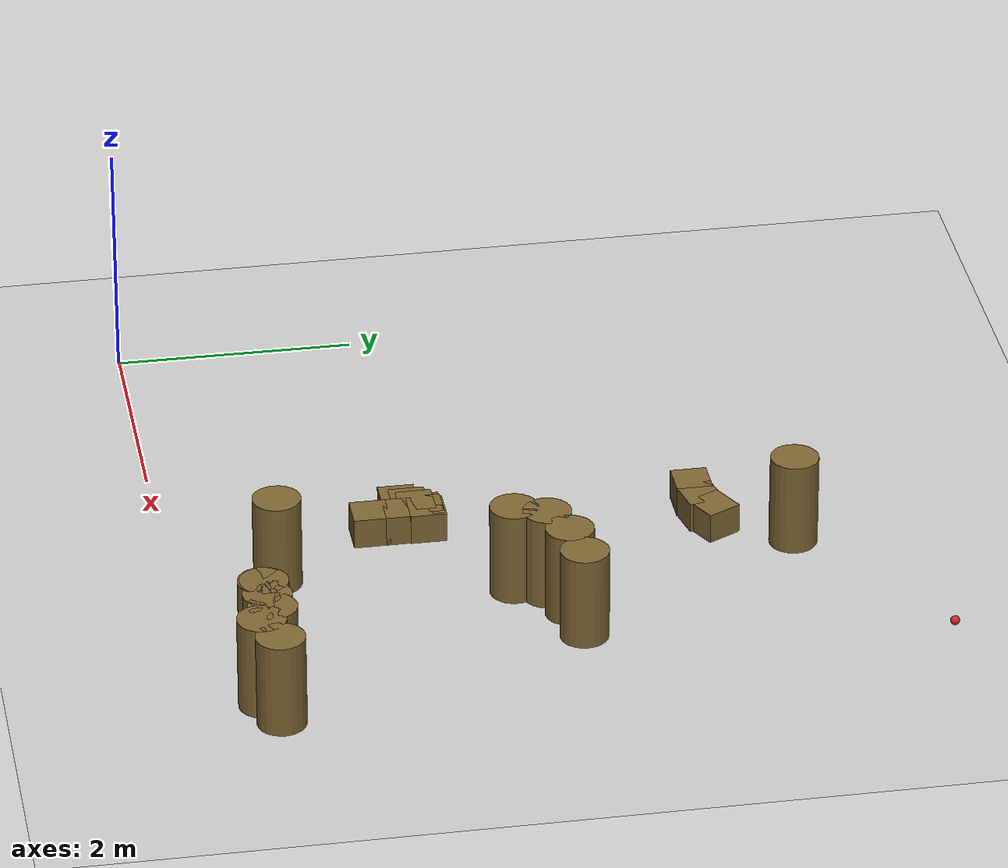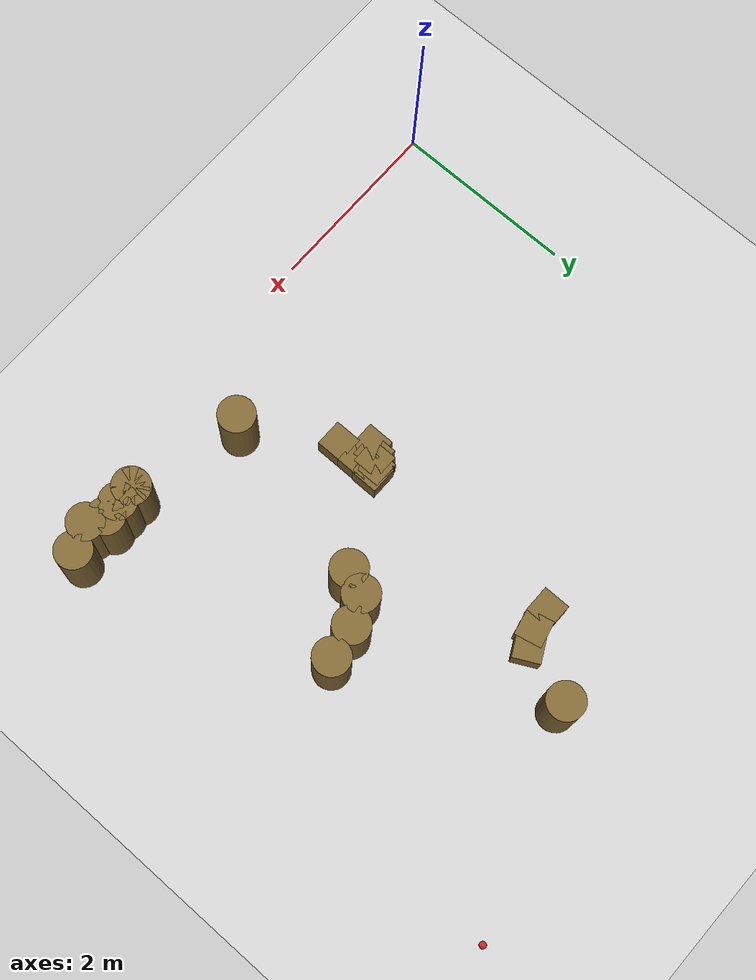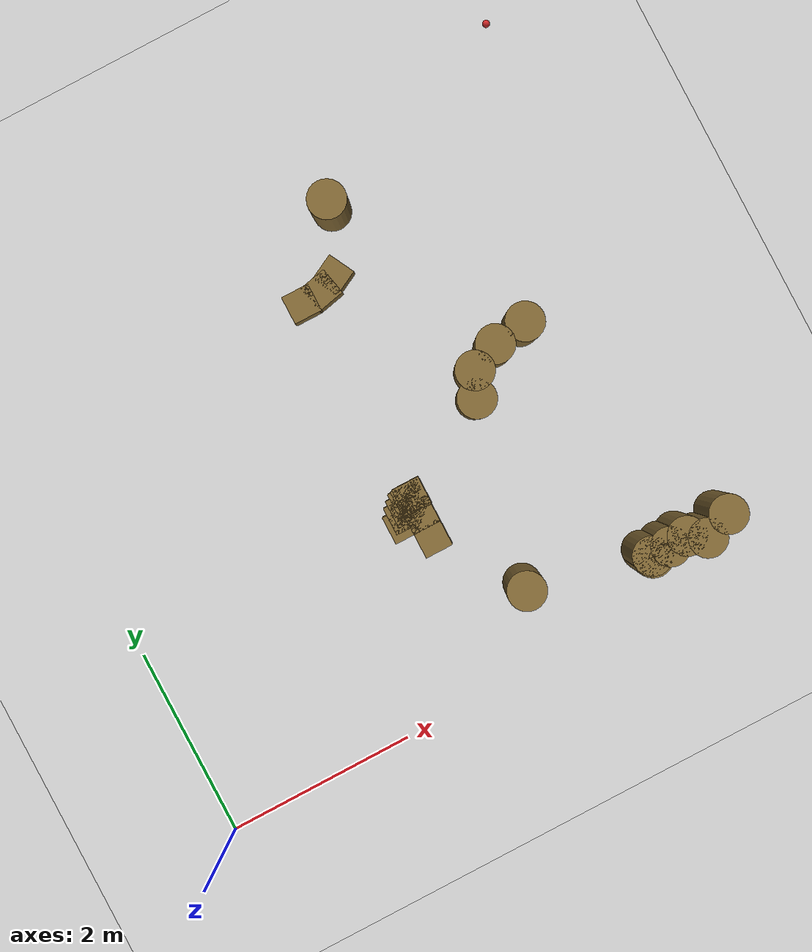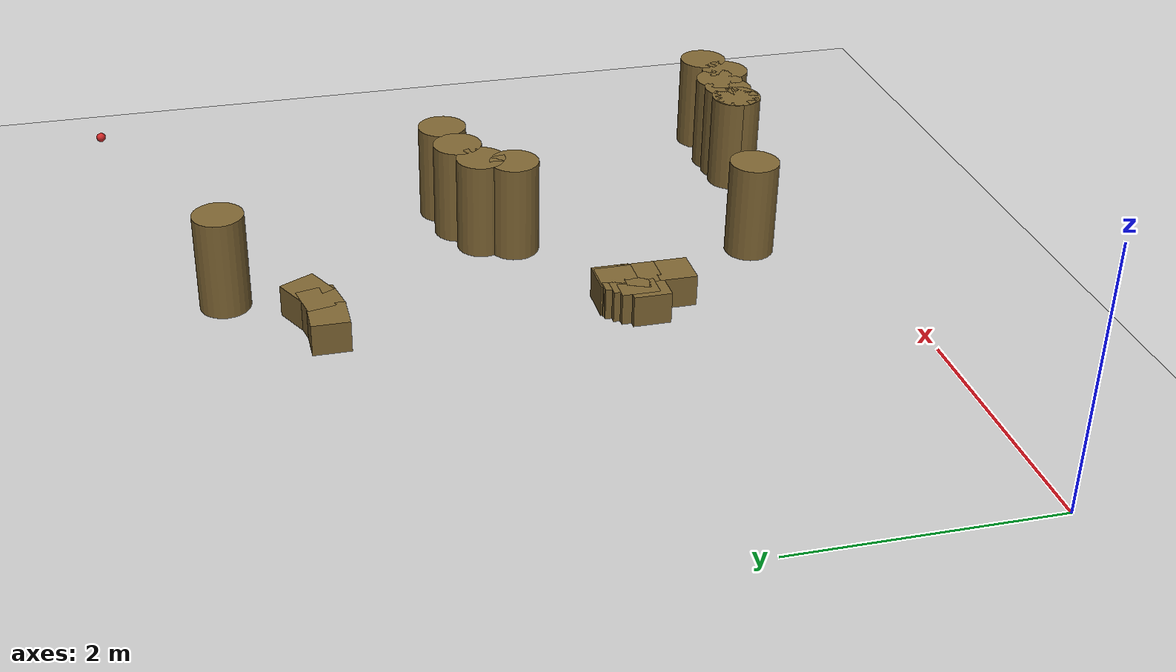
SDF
<sdf version="1.7">
 <world name="default">
  <model name="ground_plane">
   <static>1</static>
   <link name="link">
    <collision name="collision">
     <geometry><plane><normal>0 0 1</normal><size>100 100</size></plane></geometry>
     <surface><friction><ode><mu>100</mu><mu2>50</mu2></ode></friction></surface>
    </collision>
    <visual name="visual">
     <cast_shadows>0</cast_shadows>
     <geometry><plane><normal>0 0 1</normal><size>100 100</size></plane></geometry>
     <material>
      <script><uri>file://media/materials/scripts/gazebo.material</uri><name>Gazebo/Grey</name></script>
     </material>
    </visual>
   </link>
  </model>
  <model name="target_5">
   <link name="link">
    <pose>0 0 0.0375 0 -0 0</pose>
    <inertial>
     <mass>0.1467</mass>
     <inertia>
      <ixx>8.25187e-05</ixx>
      <ixy>0</ixy>
      <ixz>0</ixz>
      <iyy>8.25187e-05</iyy>
      <iyz>0</iyz>
      <izz>8.25187e-05</izz>
     </inertia>
    </inertial>
    <velocity_decay><linear>0</linear><angular>0.005</angular></velocity_decay>
    <visual name="visual">
     <geometry><sphere><radius>0.0375</radius></sphere></geometry>
     <material>
      <script><uri>file://media/materials/scripts/gazebo.material</uri><name>Gazebo/Red</name></script>
      <shader type="pixel"/>
     </material>
    </visual>
    <collision name="collision">
     <geometry><sphere><radius>0.0375</radius></sphere></geometry>
     <surface>
      <friction>
       <ode><mu>1</mu><mu2>1</mu2><fdir1>0 0 0</fdir1><slip1>0</slip1><slip2>0</slip2></ode>
       <torsional>
        <coefficient>1</coefficient>
        <patch_radius>0</patch_radius>
        <surface_radius>0.01</surface_radius>
        <use_patch_radius>0</use_patch_radius>
        <ode><slip>0</slip></ode>
       </torsional>
      </friction>
      <bounce><restitution_coefficient>0</restitution_coefficient><threshold>1e+06</threshold></bounce>
      <contact>
       <collide_without_contact>0</collide_without_contact>
       <collide_without_contact_bitmask>1</collide_without_contact_bitmask>
       <collide_bitmask>1</collide_bitmask>
       <ode>
        <soft_cfm>0</soft_cfm>
        <soft_erp>0.2</soft_erp>
        <kp>100000</kp>
        <kd>100</kd>
        <max_vel>100</max_vel>
        <min_depth>0.001</min_depth>
       </ode>
       <bullet>
        <split_impulse>1</split_impulse>
        <split_impulse_penetration_threshold>-0.01</split_impulse_penetration_threshold>
        <soft_cfm>0</soft_cfm>
        <soft_erp>0.2</soft_erp>
        <kp>100000</kp>
        <kd>100</kd>
       </bullet>
      </contact>
     </surface>
    </collision>
   </link>
   <static>1</static>
   <pose>6 6 0.5 1.38576 1.35823 0.565525</pose>
  </model>
  <model name="mini_cylinder_0_clone_0_clone_clone_clone_clone_clone_10">
   <link name="link">
    <inertial>
     <mass>1</mass>
     <inertia><ixx>0.145833</ixx><ixy>0</ixy><ixz>0</ixz><iyy>0.145833</iyy><iyz>0</iyz><izz>0.125</izz></inertia>
    </inertial>
    <visual name="visual">
     <geometry><cylinder><radius>0.2</radius><length>0.8</length></cylinder></geometry>
     <material>
      <script><name>Gazebo/Grey</name><uri>file://media/materials/scripts/gazebo.material</uri></script>
      <shader type="vertex"><normal_map>__default__</normal_map></shader>
      <ambient>0.5 0.4 0.2 1</ambient>
      <diffuse>0.7 0.7 0.7 1</diffuse>
      <specular>0.01 0.01 0.01 1</specular>
      <emissive>0 0 0 1</emissive>
     </material>
    </visual>
    <collision name="collision">
     <geometry><cylinder><radius>0.2</radius><length>0.8</length></cylinder></geometry>
     <surface>
      <friction>
       <ode><mu>1</mu><mu2>1</mu2><fdir1>0 0 0</fdir1><slip1>0</slip1><slip2>0</slip2></ode>
       <torsional>
        <coefficient>1</coefficient>
        <patch_radius>0</patch_radius>
        <surface_radius>0</surface_radius>
        <use_patch_radius>1</use_patch_radius>
        <ode><slip>0</slip></ode>
       </torsional>
      </friction>
      <bounce><restitution_coefficient>0</restitution_coefficient><threshold>1e+06</threshold></bounce>
      <contact>
       <collide_without_contact>0</collide_without_contact>
       <collide_without_contact_bitmask>1</collide_without_contact_bitmask>
       <collide_bitmask>1</collide_bitmask>
       <ode>
        <soft_cfm>0</soft_cfm>
        <soft_erp>0.2</soft_erp>
        <kp>1e+13</kp>
        <kd>1</kd>
        <max_vel>0.01</max_vel>
        <min_depth>0</min_depth>
       </ode>
       <bullet>
        <split_impulse>1</split_impulse>
        <split_impulse_penetration_threshold>-0.01</split_impulse_penetration_threshold>
        <soft_cfm>0</soft_cfm>
        <soft_erp>0.2</soft_erp>
        <kp>1e+13</kp>
        <kd>1</kd>
       </bullet>
      </contact>
     </surface>
    </collision>
   </link>
   <static>1</static>
   <pose>5.84454 0.611639 0.4 0 -0 0</pose>
  </model>
  <model name="mini_cylinder_0_clone_0_clone_clone_clone_clone_clone_11">
   <link name="link">
    <inertial>
     <mass>1</mass>
     <inertia><ixx>0.145833</ixx><ixy>0</ixy><ixz>0</ixz><iyy>0.145833</iyy><iyz>0</iyz><izz>0.125</izz></inertia>
    </inertial>
    <visual name="visual">
     <geometry><cylinder><radius>0.2</radius><length>0.8</length></cylinder></geometry>
     <material>
      <script><name>Gazebo/Grey</name><uri>file://media/materials/scripts/gazebo.material</uri></script>
      <shader type="vertex"><normal_map>__default__</normal_map></shader>
      <ambient>0.5 0.4 0.2 1</ambient>
      <diffuse>0.7 0.7 0.7 1</diffuse>
      <specular>0.01 0.01 0.01 1</specular>
      <emissive>0 0 0 1</emissive>
     </material>
    </visual>
    <collision name="collision">
     <geometry><cylinder><radius>0.2</radius><length>0.8</length></cylinder></geometry>
     <surface>
      <friction>
       <ode><mu>1</mu><mu2>1</mu2><fdir1>0 0 0</fdir1><slip1>0</slip1><slip2>0</slip2></ode>
       <torsional>
        <coefficient>1</coefficient>
        <patch_radius>0</patch_radius>
        <surface_radius>0</surface_radius>
        <use_patch_radius>1</use_patch_radius>
        <ode><slip>0</slip></ode>
       </torsional>
      </friction>
      <bounce><restitution_coefficient>0</restitution_coefficient><threshold>1e+06</threshold></bounce>
      <contact>
       <collide_without_contact>0</collide_without_contact>
       <collide_without_contact_bitmask>1</collide_without_contact_bitmask>
       <collide_bitmask>1</collide_bitmask>
       <ode>
        <soft_cfm>0</soft_cfm>
        <soft_erp>0.2</soft_erp>
        <kp>1e+13</kp>
        <kd>1</kd>
        <max_vel>0.01</max_vel>
        <min_depth>0</min_depth>
       </ode>
       <bullet>
        <split_impulse>1</split_impulse>
        <split_impulse_penetration_threshold>-0.01</split_impulse_penetration_threshold>
        <soft_cfm>0</soft_cfm>
        <soft_erp>0.2</soft_erp>
        <kp>1e+13</kp>
        <kd>1</kd>
       </bullet>
      </contact>
     </surface>
    </collision>
   </link>
   <static>1</static>
   <pose>5.56143 0.50154 0.4 0 -0 0</pose>
  </model>
  <model name="mini_cylinder_0_clone_0_clone_clone_clone_clone_clone_12">
   <link name="link">
    <inertial>
     <mass>1</mass>
     <inertia><ixx>0.145833</ixx><ixy>0</ixy><ixz>0</ixz><iyy>0.145833</iyy><iyz>0</iyz><izz>0.125</izz></inertia>
    </inertial>
    <visual name="visual">
     <geometry><cylinder><radius>0.2</radius><length>0.8</length></cylinder></geometry>
     <material>
      <script><name>Gazebo/Grey</name><uri>file://media/materials/scripts/gazebo.material</uri></script>
      <shader type="vertex"><normal_map>__default__</normal_map></shader>
      <ambient>0.5 0.4 0.2 1</ambient>
      <diffuse>0.7 0.7 0.7 1</diffuse>
      <specular>0.01 0.01 0.01 1</specular>
      <emissive>0 0 0 1</emissive>
     </material>
    </visual>
    <collision name="collision">
     <geometry><cylinder><radius>0.2</radius><length>0.8</length></cylinder></geometry>
     <surface>
      <friction>
       <ode><mu>1</mu><mu2>1</mu2><fdir1>0 0 0</fdir1><slip1>0</slip1><slip2>0</slip2></ode>
       <torsional>
        <coefficient>1</coefficient>
        <patch_radius>0</patch_radius>
        <surface_radius>0</surface_radius>
        <use_patch_radius>1</use_patch_radius>
        <ode><slip>0</slip></ode>
       </torsional>
      </friction>
      <bounce><restitution_coefficient>0</restitution_coefficient><threshold>1e+06</threshold></bounce>
      <contact>
       <collide_without_contact>0</collide_without_contact>
       <collide_without_contact_bitmask>1</collide_without_contact_bitmask>
       <collide_bitmask>1</collide_bitmask>
       <ode>
        <soft_cfm>0</soft_cfm>
        <soft_erp>0.2</soft_erp>
        <kp>1e+13</kp>
        <kd>1</kd>
        <max_vel>0.01</max_vel>
        <min_depth>0</min_depth>
       </ode>
       <bullet>
        <split_impulse>1</split_impulse>
        <split_impulse_penetration_threshold>-0.01</split_impulse_penetration_threshold>
        <soft_cfm>0</soft_cfm>
        <soft_erp>0.2</soft_erp>
        <kp>1e+13</kp>
        <kd>1</kd>
       </bullet>
      </contact>
     </surface>
    </collision>
   </link>
   <static>1</static>
   <pose>5.38842 0.611639 0.4 0 -0 0</pose>
  </model>
  <model name="mini_cylinder_0_clone_0_clone_clone_clone_clone_clone_13">
   <link name="link">
    <inertial>
     <mass>1</mass>
     <inertia><ixx>0.145833</ixx><ixy>0</ixy><ixz>0</ixz><iyy>0.145833</iyy><iyz>0</iyz><izz>0.125</izz></inertia>
    </inertial>
    <visual name="visual">
     <geometry><cylinder><radius>0.2</radius><length>0.8</length></cylinder></geometry>
     <material>
      <script><name>Gazebo/Grey</name><uri>file://media/materials/scripts/gazebo.material</uri></script>
      <shader type="vertex"><normal_map>__default__</normal_map></shader>
      <ambient>0.5 0.4 0.2 1</ambient>
      <diffuse>0.7 0.7 0.7 1</diffuse>
      <specular>0.01 0.01 0.01 1</specular>
      <emissive>0 0 0 1</emissive>
     </material>
    </visual>
    <collision name="collision">
     <geometry><cylinder><radius>0.2</radius><length>0.8</length></cylinder></geometry>
     <surface>
      <friction>
       <ode><mu>1</mu><mu2>1</mu2><fdir1>0 0 0</fdir1><slip1>0</slip1><slip2>0</slip2></ode>
       <torsional>
        <coefficient>1</coefficient>
        <patch_radius>0</patch_radius>
        <surface_radius>0</surface_radius>
        <use_patch_radius>1</use_patch_radius>
        <ode><slip>0</slip></ode>
       </torsional>
      </friction>
      <bounce><restitution_coefficient>0</restitution_coefficient><threshold>1e+06</threshold></bounce>
      <contact>
       <collide_without_contact>0</collide_without_contact>
       <collide_without_contact_bitmask>1</collide_without_contact_bitmask>
       <collide_bitmask>1</collide_bitmask>
       <ode>
        <soft_cfm>0</soft_cfm>
        <soft_erp>0.2</soft_erp>
        <kp>1e+13</kp>
        <kd>1</kd>
        <max_vel>0.01</max_vel>
        <min_depth>0</min_depth>
       </ode>
       <bullet>
        <split_impulse>1</split_impulse>
        <split_impulse_penetration_threshold>-0.01</split_impulse_penetration_threshold>
        <soft_cfm>0</soft_cfm>
        <soft_erp>0.2</soft_erp>
        <kp>1e+13</kp>
        <kd>1</kd>
       </bullet>
      </contact>
     </surface>
    </collision>
   </link>
   <static>1</static>
   <pose>5.19968 0.595912 0.4 0 -0 0</pose>
  </model>
  <model name="mini_cylinder_0_clone_0_clone_clone_clone_clone_clone_14">
   <link name="link">
    <inertial>
     <mass>1</mass>
     <inertia><ixx>0.145833</ixx><ixy>0</ixy><ixz>0</ixz><iyy>0.145833</iyy><iyz>0</iyz><izz>0.125</izz></inertia>
    </inertial>
    <visual name="visual">
     <geometry><cylinder><radius>0.2</radius><length>0.8</length></cylinder></geometry>
     <material>
      <script><name>Gazebo/Grey</name><uri>file://media/materials/scripts/gazebo.material</uri></script>
      <shader type="vertex"><normal_map>__default__</normal_map></shader>
      <ambient>0.5 0.4 0.2 1</ambient>
      <diffuse>0.7 0.7 0.7 1</diffuse>
      <specular>0.01 0.01 0.01 1</specular>
      <emissive>0 0 0 1</emissive>
     </material>
    </visual>
    <collision name="collision">
     <geometry><cylinder><radius>0.2</radius><length>0.8</length></cylinder></geometry>
     <surface>
      <friction>
       <ode><mu>1</mu><mu2>1</mu2><fdir1>0 0 0</fdir1><slip1>0</slip1><slip2>0</slip2></ode>
       <torsional>
        <coefficient>1</coefficient>
        <patch_radius>0</patch_radius>
        <surface_radius>0</surface_radius>
        <use_patch_radius>1</use_patch_radius>
        <ode><slip>0</slip></ode>
       </torsional>
      </friction>
      <bounce><restitution_coefficient>0</restitution_coefficient><threshold>1e+06</threshold></bounce>
      <contact>
       <collide_without_contact>0</collide_without_contact>
       <collide_without_contact_bitmask>1</collide_without_contact_bitmask>
       <collide_bitmask>1</collide_bitmask>
       <ode>
        <soft_cfm>0</soft_cfm>
        <soft_erp>0.2</soft_erp>
        <kp>1e+13</kp>
        <kd>1</kd>
        <max_vel>0.01</max_vel>
        <min_depth>0</min_depth>
       </ode>
       <bullet>
        <split_impulse>1</split_impulse>
        <split_impulse_penetration_threshold>-0.01</split_impulse_penetration_threshold>
        <soft_cfm>0</soft_cfm>
        <soft_erp>0.2</soft_erp>
        <kp>1e+13</kp>
        <kd>1</kd>
       </bullet>
      </contact>
     </surface>
    </collision>
   </link>
   <static>1</static>
   <pose>5 0.595912 0.4 0 -0 0</pose>
  </model>
  <model name="mini_cylinder_0_clone_0_clone_clone_clone_clone_clone_15">
   <link name="link">
    <inertial>
     <mass>1</mass>
     <inertia><ixx>0.145833</ixx><ixy>0</ixy><ixz>0</ixz><iyy>0.145833</iyy><iyz>0</iyz><izz>0.125</izz></inertia>
    </inertial>
    <visual name="visual">
     <geometry><cylinder><radius>0.2</radius><length>0.8</length></cylinder></geometry>
     <material>
      <script><name>Gazebo/Grey</name><uri>file://media/materials/scripts/gazebo.material</uri></script>
      <shader type="vertex"><normal_map>__default__</normal_map></shader>
      <ambient>0.5 0.4 0.2 1</ambient>
      <diffuse>0.7 0.7 0.7 1</diffuse>
      <specular>0.01 0.01 0.01 1</specular>
      <emissive>0 0 0 1</emissive>
     </material>
    </visual>
    <collision name="collision">
     <geometry><cylinder><radius>0.2</radius><length>0.8</length></cylinder></geometry>
     <surface>
      <friction>
       <ode><mu>1</mu><mu2>1</mu2><fdir1>0 0 0</fdir1><slip1>0</slip1><slip2>0</slip2></ode>
       <torsional>
        <coefficient>1</coefficient>
        <patch_radius>0</patch_radius>
        <surface_radius>0</surface_radius>
        <use_patch_radius>1</use_patch_radius>
        <ode><slip>0</slip></ode>
       </torsional>
      </friction>
      <bounce><restitution_coefficient>0</restitution_coefficient><threshold>1e+06</threshold></bounce>
      <contact>
       <collide_without_contact>0</collide_without_contact>
       <collide_without_contact_bitmask>1</collide_without_contact_bitmask>
       <collide_bitmask>1</collide_bitmask>
       <ode>
        <soft_cfm>0</soft_cfm>
        <soft_erp>0.2</soft_erp>
        <kp>1e+13</kp>
        <kd>1</kd>
        <max_vel>0.01</max_vel>
        <min_depth>0</min_depth>
       </ode>
       <bullet>
        <split_impulse>1</split_impulse>
        <split_impulse_penetration_threshold>-0.01</split_impulse_penetration_threshold>
        <soft_cfm>0</soft_cfm>
        <soft_erp>0.2</soft_erp>
        <kp>1e+13</kp>
        <kd>1</kd>
       </bullet>
      </contact>
     </surface>
    </collision>
   </link>
   <static>1</static>
   <pose>5 0.580184 0.4 0 -0 0</pose>
  </model>
  <model name="mini_cylinder_0_clone_0_clone_clone_clone_clone_clone_16">
   <link name="link">
    <inertial>
     <mass>1</mass>
     <inertia><ixx>0.145833</ixx><ixy>0</ixy><ixz>0</ixz><iyy>0.145833</iyy><iyz>0</iyz><izz>0.125</izz></inertia>
    </inertial>
    <visual name="visual">
     <geometry><cylinder><radius>0.2</radius><length>0.8</length></cylinder></geometry>
     <material>
      <script><name>Gazebo/Grey</name><uri>file://media/materials/scripts/gazebo.material</uri></script>
      <shader type="vertex"><normal_map>__default__</normal_map></shader>
      <ambient>0.5 0.4 0.2 1</ambient>
      <diffuse>0.7 0.7 0.7 1</diffuse>
      <specular>0.01 0.01 0.01 1</specular>
      <emissive>0 0 0 1</emissive>
     </material>
    </visual>
    <collision name="collision">
     <geometry><cylinder><radius>0.2</radius><length>0.8</length></cylinder></geometry>
     <surface>
      <friction>
       <ode><mu>1</mu><mu2>1</mu2><fdir1>0 0 0</fdir1><slip1>0</slip1><slip2>0</slip2></ode>
       <torsional>
        <coefficient>1</coefficient>
        <patch_radius>0</patch_radius>
        <surface_radius>0</surface_radius>
        <use_patch_radius>1</use_patch_radius>
        <ode><slip>0</slip></ode>
       </torsional>
      </friction>
      <bounce><restitution_coefficient>0</restitution_coefficient><threshold>1e+06</threshold></bounce>
      <contact>
       <collide_without_contact>0</collide_without_contact>
       <collide_without_contact_bitmask>1</collide_without_contact_bitmask>
       <collide_bitmask>1</collide_bitmask>
       <ode>
        <soft_cfm>0</soft_cfm>
        <soft_erp>0.2</soft_erp>
        <kp>1e+13</kp>
        <kd>1</kd>
        <max_vel>0.01</max_vel>
        <min_depth>0</min_depth>
       </ode>
       <bullet>
        <split_impulse>1</split_impulse>
        <split_impulse_penetration_threshold>-0.01</split_impulse_penetration_threshold>
        <soft_cfm>0</soft_cfm>
        <soft_erp>0.2</soft_erp>
        <kp>1e+13</kp>
        <kd>1</kd>
       </bullet>
      </contact>
     </surface>
    </collision>
   </link>
   <static>1</static>
   <pose>4.3189 2.98661 0.4 0 -0 0</pose>
  </model>
  <model name="mini_cylinder_0_clone_0_clone_clone_clone_clone_clone_26">
   <link name="link">
    <inertial>
     <mass>1</mass>
     <inertia><ixx>0.145833</ixx><ixy>0</ixy><ixz>0</ixz><iyy>0.145833</iyy><iyz>0</iyz><izz>0.125</izz></inertia>
    </inertial>
    <visual name="visual">
     <geometry><cylinder><radius>0.2</radius><length>0.8</length></cylinder></geometry>
     <material>
      <script><name>Gazebo/Grey</name><uri>file://media/materials/scripts/gazebo.material</uri></script>
      <shader type="vertex"><normal_map>__default__</normal_map></shader>
      <ambient>0.5 0.4 0.2 1</ambient>
      <diffuse>0.7 0.7 0.7 1</diffuse>
      <specular>0.01 0.01 0.01 1</specular>
      <emissive>0 0 0 1</emissive>
     </material>
    </visual>
    <collision name="collision">
     <geometry><cylinder><radius>0.2</radius><length>0.8</length></cylinder></geometry>
     <surface>
      <friction>
       <ode><mu>1</mu><mu2>1</mu2><fdir1>0 0 0</fdir1><slip1>0</slip1><slip2>0</slip2></ode>
       <torsional>
        <coefficient>1</coefficient>
        <patch_radius>0</patch_radius>
        <surface_radius>0</surface_radius>
        <use_patch_radius>1</use_patch_radius>
        <ode><slip>0</slip></ode>
       </torsional>
      </friction>
      <bounce><restitution_coefficient>0</restitution_coefficient><threshold>1e+06</threshold></bounce>
      <contact>
       <collide_without_contact>0</collide_without_contact>
       <collide_without_contact_bitmask>1</collide_without_contact_bitmask>
       <collide_bitmask>1</collide_bitmask>
       <ode>
        <soft_cfm>0</soft_cfm>
        <soft_erp>0.2</soft_erp>
        <kp>1e+13</kp>
        <kd>1</kd>
        <max_vel>0.01</max_vel>
        <min_depth>0</min_depth>
       </ode>
       <bullet>
        <split_impulse>1</split_impulse>
        <split_impulse_penetration_threshold>-0.01</split_impulse_penetration_threshold>
        <soft_cfm>0</soft_cfm>
        <soft_erp>0.2</soft_erp>
        <kp>1e+13</kp>
        <kd>1</kd>
       </bullet>
      </contact>
     </surface>
    </collision>
   </link>
   <static>1</static>
   <pose>4.20879 2.73496 0.4 0 -0 0</pose>
  </model>
  <model name="mini_cylinder_0_clone_0_clone_clone_clone_clone_clone_41">
   <link name="link">
    <inertial>
     <mass>1</mass>
     <inertia><ixx>0.145833</ixx><ixy>0</ixy><ixz>0</ixz><iyy>0.145833</iyy><iyz>0</iyz><izz>0.125</izz></inertia>
    </inertial>
    <visual name="visual">
     <geometry><cylinder><radius>0.2</radius><length>0.8</length></cylinder></geometry>
     <material>
      <script><name>Gazebo/Grey</name><uri>file://media/materials/scripts/gazebo.material</uri></script>
      <shader type="vertex"><normal_map>__default__</normal_map></shader>
      <ambient>0.5 0.4 0.2 1</ambient>
      <diffuse>0.7 0.7 0.7 1</diffuse>
      <specular>0.01 0.01 0.01 1</specular>
      <emissive>0 0 0 1</emissive>
     </material>
    </visual>
    <collision name="collision">
     <geometry><cylinder><radius>0.2</radius><length>0.8</length></cylinder></geometry>
     <surface>
      <friction>
       <ode><mu>1</mu><mu2>1</mu2><fdir1>0 0 0</fdir1><slip1>0</slip1><slip2>0</slip2></ode>
       <torsional>
        <coefficient>1</coefficient>
        <patch_radius>0</patch_radius>
        <surface_radius>0</surface_radius>
        <use_patch_radius>1</use_patch_radius>
        <ode><slip>0</slip></ode>
       </torsional>
      </friction>
      <bounce><restitution_coefficient>0</restitution_coefficient><threshold>1e+06</threshold></bounce>
      <contact>
       <collide_without_contact>0</collide_without_contact>
       <collide_without_contact_bitmask>1</collide_without_contact_bitmask>
       <collide_bitmask>1</collide_bitmask>
       <ode>
        <soft_cfm>0</soft_cfm>
        <soft_erp>0.2</soft_erp>
        <kp>1e+13</kp>
        <kd>1</kd>
        <max_vel>0.01</max_vel>
        <min_depth>0</min_depth>
       </ode>
       <bullet>
        <split_impulse>1</split_impulse>
        <split_impulse_penetration_threshold>-0.01</split_impulse_penetration_threshold>
        <soft_cfm>0</soft_cfm>
        <soft_erp>0.2</soft_erp>
        <kp>1e+13</kp>
        <kd>1</kd>
       </bullet>
      </contact>
     </surface>
    </collision>
   </link>
   <static>1</static>
   <pose>3.76894 0.863026 0.4 0 -0 0</pose>
  </model>
  <model name="mini_box_0.3">
   <link name="link">
    <inertial>
     <mass>1</mass>
     <inertia>
      <ixx>0.166667</ixx>
      <ixy>0</ixy>
      <ixz>0</ixz>
      <iyy>0.166667</iyy>
      <iyz>0</iyz>
      <izz>0.166667</izz>
     </inertia>
    </inertial>
    <visual name="visual">
     <geometry><box><size>0.3 0.3 0.5</size></box></geometry>
     <material>
      <script><name>Gazebo/Grey</name><uri>file://media/materials/scripts/gazebo.material</uri></script>
      <shader type="vertex"><normal_map>__default__</normal_map></shader>
      <ambient>0.5 0.4 0.2 1</ambient>
      <diffuse>0.7 0.7 0.7 1</diffuse>
      <specular>0.01 0.01 0.01 1</specular>
      <emissive>0 0 0 1</emissive>
     </material>
    </visual>
    <collision name="collision">
     <geometry><box><size>0.3 0.3 0.3</size></box></geometry>
     <surface>
      <friction>
       <ode><mu>1</mu><mu2>1</mu2><fdir1>0 0 0</fdir1><slip1>0</slip1><slip2>0</slip2></ode>
       <torsional>
        <coefficient>1</coefficient>
        <patch_radius>0</patch_radius>
        <surface_radius>0</surface_radius>
        <use_patch_radius>1</use_patch_radius>
        <ode><slip>0</slip></ode>
       </torsional>
      </friction>
      <bounce><restitution_coefficient>0</restitution_coefficient><threshold>1e+06</threshold></bounce>
      <contact>
       <collide_without_contact>0</collide_without_contact>
       <collide_without_contact_bitmask>1</collide_without_contact_bitmask>
       <collide_bitmask>1</collide_bitmask>
       <ode>
        <soft_cfm>0</soft_cfm>
        <soft_erp>0.2</soft_erp>
        <kp>1e+13</kp>
        <kd>1</kd>
        <max_vel>0.01</max_vel>
        <min_depth>0</min_depth>
       </ode>
       <bullet>
        <split_impulse>1</split_impulse>
        <split_impulse_penetration_threshold>-0.01</split_impulse_penetration_threshold>
        <soft_cfm>0</soft_cfm>
        <soft_erp>0.2</soft_erp>
        <kp>1e+13</kp>
        <kd>1</kd>
       </bullet>
      </contact>
     </surface>
    </collision>
   </link>
   <static>1</static>
   <pose>3.18574 2.1731 0 0 -0 0</pose>
  </model>
  <model name="mini_box_0.3_clone">
   <link name="link">
    <inertial>
     <mass>1</mass>
     <inertia>
      <ixx>0.166667</ixx>
      <ixy>0</ixy>
      <ixz>0</ixz>
      <iyy>0.166667</iyy>
      <iyz>0</iyz>
      <izz>0.166667</izz>
     </inertia>
    </inertial>
    <visual name="visual">
     <geometry><box><size>0.3 0.3 0.5</size></box></geometry>
     <material>
      <script><name>Gazebo/Grey</name><uri>file://media/materials/scripts/gazebo.material</uri></script>
      <shader type="vertex"><normal_map>__default__</normal_map></shader>
      <ambient>0.5 0.4 0.2 1</ambient>
      <diffuse>0.7 0.7 0.7 1</diffuse>
      <specular>0.01 0.01 0.01 1</specular>
      <emissive>0 0 0 1</emissive>
     </material>
    </visual>
    <collision name="collision">
     <geometry><box><size>0.3 0.3 0.3</size></box></geometry>
     <surface>
      <friction>
       <ode><mu>1</mu><mu2>1</mu2><fdir1>0 0 0</fdir1><slip1>0</slip1><slip2>0</slip2></ode>
       <torsional>
        <coefficient>1</coefficient>
        <patch_radius>0</patch_radius>
        <surface_radius>0</surface_radius>
        <use_patch_radius>1</use_patch_radius>
        <ode><slip>0</slip></ode>
       </torsional>
      </friction>
      <bounce><restitution_coefficient>0</restitution_coefficient><threshold>1e+06</threshold></bounce>
      <contact>
       <collide_without_contact>0</collide_without_contact>
       <collide_without_contact_bitmask>1</collide_without_contact_bitmask>
       <collide_bitmask>1</collide_bitmask>
       <ode>
        <soft_cfm>0</soft_cfm>
        <soft_erp>0.2</soft_erp>
        <kp>1e+13</kp>
        <kd>1</kd>
        <max_vel>0.01</max_vel>
        <min_depth>0</min_depth>
       </ode>
       <bullet>
        <split_impulse>1</split_impulse>
        <split_impulse_penetration_threshold>-0.01</split_impulse_penetration_threshold>
        <soft_cfm>0</soft_cfm>
        <soft_erp>0.2</soft_erp>
        <kp>1e+13</kp>
        <kd>1</kd>
       </bullet>
      </contact>
     </surface>
    </collision>
   </link>
   <static>1</static>
   <pose>3.17806 1.97138 0 0 -0 0</pose>
  </model>
  <model name="mini_box_0.3_clone_0">
   <link name="link">
    <inertial>
     <mass>1</mass>
     <inertia>
      <ixx>0.166667</ixx>
      <ixy>0</ixy>
      <ixz>0</ixz>
      <iyy>0.166667</iyy>
      <iyz>0</iyz>
      <izz>0.166667</izz>
     </inertia>
    </inertial>
    <visual name="visual">
     <geometry><box><size>0.3 0.3 0.5</size></box></geometry>
     <material>
      <script><name>Gazebo/Grey</name><uri>file://media/materials/scripts/gazebo.material</uri></script>
      <shader type="vertex"><normal_map>__default__</normal_map></shader>
      <ambient>0.5 0.4 0.2 1</ambient>
      <diffuse>0.7 0.7 0.7 1</diffuse>
      <specular>0.01 0.01 0.01 1</specular>
      <emissive>0 0 0 1</emissive>
     </material>
    </visual>
    <collision name="collision">
     <geometry><box><size>0.3 0.3 0.3</size></box></geometry>
     <surface>
      <friction>
       <ode><mu>1</mu><mu2>1</mu2><fdir1>0 0 0</fdir1><slip1>0</slip1><slip2>0</slip2></ode>
       <torsional>
        <coefficient>1</coefficient>
        <patch_radius>0</patch_radius>
        <surface_radius>0</surface_radius>
        <use_patch_radius>1</use_patch_radius>
        <ode><slip>0</slip></ode>
       </torsional>
      </friction>
      <bounce><restitution_coefficient>0</restitution_coefficient><threshold>1e+06</threshold></bounce>
      <contact>
       <collide_without_contact>0</collide_without_contact>
       <collide_without_contact_bitmask>1</collide_without_contact_bitmask>
       <collide_bitmask>1</collide_bitmask>
       <ode>
        <soft_cfm>0</soft_cfm>
        <soft_erp>0.2</soft_erp>
        <kp>1e+13</kp>
        <kd>1</kd>
        <max_vel>0.01</max_vel>
        <min_depth>0</min_depth>
       </ode>
       <bullet>
        <split_impulse>1</split_impulse>
        <split_impulse_penetration_threshold>-0.01</split_impulse_penetration_threshold>
        <soft_cfm>0</soft_cfm>
        <soft_erp>0.2</soft_erp>
        <kp>1e+13</kp>
        <kd>1</kd>
       </bullet>
      </contact>
     </surface>
    </collision>
   </link>
   <static>1</static>
   <pose>3.17806 1.70376 0 0 -0 0</pose>
  </model>
  <model name="mini_box_0.3_clone_1">
   <link name="link">
    <inertial>
     <mass>1</mass>
     <inertia>
      <ixx>0.166667</ixx>
      <ixy>0</ixy>
      <ixz>0</ixz>
      <iyy>0.166667</iyy>
      <iyz>0</iyz>
      <izz>0.166667</izz>
     </inertia>
    </inertial>
    <visual name="visual">
     <geometry><box><size>0.3 0.3 0.5</size></box></geometry>
     <material>
      <script><name>Gazebo/Grey</name><uri>file://media/materials/scripts/gazebo.material</uri></script>
      <shader type="vertex"><normal_map>__default__</normal_map></shader>
      <ambient>0.5 0.4 0.2 1</ambient>
      <diffuse>0.7 0.7 0.7 1</diffuse>
      <specular>0.01 0.01 0.01 1</specular>
      <emissive>0 0 0 1</emissive>
     </material>
    </visual>
    <collision name="collision">
     <geometry><box><size>0.3 0.3 0.3</size></box></geometry>
     <surface>
      <friction>
       <ode><mu>1</mu><mu2>1</mu2><fdir1>0 0 0</fdir1><slip1>0</slip1><slip2>0</slip2></ode>
       <torsional>
        <coefficient>1</coefficient>
        <patch_radius>0</patch_radius>
        <surface_radius>0</surface_radius>
        <use_patch_radius>1</use_patch_radius>
        <ode><slip>0</slip></ode>
       </torsional>
      </friction>
      <bounce><restitution_coefficient>0</restitution_coefficient><threshold>1e+06</threshold></bounce>
      <contact>
       <collide_without_contact>0</collide_without_contact>
       <collide_without_contact_bitmask>1</collide_without_contact_bitmask>
       <collide_bitmask>1</collide_bitmask>
       <ode>
        <soft_cfm>0</soft_cfm>
        <soft_erp>0.2</soft_erp>
        <kp>1e+13</kp>
        <kd>1</kd>
        <max_vel>0.01</max_vel>
        <min_depth>0</min_depth>
       </ode>
       <bullet>
        <split_impulse>1</split_impulse>
        <split_impulse_penetration_threshold>-0.01</split_impulse_penetration_threshold>
        <soft_cfm>0</soft_cfm>
        <soft_erp>0.2</soft_erp>
        <kp>1e+13</kp>
        <kd>1</kd>
       </bullet>
      </contact>
     </surface>
    </collision>
   </link>
   <static>1</static>
   <pose>3.16298 2.16075 0 0 -0 0</pose>
  </model>
  <model name="mini_box_0.3_clone_2">
   <link name="link">
    <inertial>
     <mass>1</mass>
     <inertia>
      <ixx>0.166667</ixx>
      <ixy>0</ixy>
      <ixz>0</ixz>
      <iyy>0.166667</iyy>
      <iyz>0</iyz>
      <izz>0.166667</izz>
     </inertia>
    </inertial>
    <visual name="visual">
     <geometry><box><size>0.3 0.3 0.5</size></box></geometry>
     <material>
      <script><name>Gazebo/Grey</name><uri>file://media/materials/scripts/gazebo.material</uri></script>
      <shader type="vertex"><normal_map>__default__</normal_map></shader>
      <ambient>0.5 0.4 0.2 1</ambient>
      <diffuse>0.7 0.7 0.7 1</diffuse>
      <specular>0.01 0.01 0.01 1</specular>
      <emissive>0 0 0 1</emissive>
     </material>
    </visual>
    <collision name="collision">
     <geometry><box><size>0.3 0.3 0.3</size></box></geometry>
     <surface>
      <friction>
       <ode><mu>1</mu><mu2>1</mu2><fdir1>0 0 0</fdir1><slip1>0</slip1><slip2>0</slip2></ode>
       <torsional>
        <coefficient>1</coefficient>
        <patch_radius>0</patch_radius>
        <surface_radius>0</surface_radius>
        <use_patch_radius>1</use_patch_radius>
        <ode><slip>0</slip></ode>
       </torsional>
      </friction>
      <bounce><restitution_coefficient>0</restitution_coefficient><threshold>1e+06</threshold></bounce>
      <contact>
       <collide_without_contact>0</collide_without_contact>
       <collide_without_contact_bitmask>1</collide_without_contact_bitmask>
       <collide_bitmask>1</collide_bitmask>
       <ode>
        <soft_cfm>0</soft_cfm>
        <soft_erp>0.2</soft_erp>
        <kp>1e+13</kp>
        <kd>1</kd>
        <max_vel>0.01</max_vel>
        <min_depth>0</min_depth>
       </ode>
       <bullet>
        <split_impulse>1</split_impulse>
        <split_impulse_penetration_threshold>-0.01</split_impulse_penetration_threshold>
        <soft_cfm>0</soft_cfm>
        <soft_erp>0.2</soft_erp>
        <kp>1e+13</kp>
        <kd>1</kd>
       </bullet>
      </contact>
     </surface>
    </collision>
   </link>
   <static>1</static>
   <pose>3.12847 2.15212 0 0 -0 0</pose>
  </model>
  <model name="mini_box_0.3_clone_3">
   <link name="link">
    <inertial>
     <mass>1</mass>
     <inertia>
      <ixx>0.166667</ixx>
      <ixy>0</ixy>
      <ixz>0</ixz>
      <iyy>0.166667</iyy>
      <iyz>0</iyz>
      <izz>0.166667</izz>
     </inertia>
    </inertial>
    <visual name="visual">
     <geometry><box><size>0.3 0.3 0.5</size></box></geometry>
     <material>
      <script><name>Gazebo/Grey</name><uri>file://media/materials/scripts/gazebo.material</uri></script>
      <shader type="vertex"><normal_map>__default__</normal_map></shader>
      <ambient>0.5 0.4 0.2 1</ambient>
      <diffuse>0.7 0.7 0.7 1</diffuse>
      <specular>0.01 0.01 0.01 1</specular>
      <emissive>0 0 0 1</emissive>
     </material>
    </visual>
    <collision name="collision">
     <geometry><box><size>0.3 0.3 0.3</size></box></geometry>
     <surface>
      <friction>
       <ode><mu>1</mu><mu2>1</mu2><fdir1>0 0 0</fdir1><slip1>0</slip1><slip2>0</slip2></ode>
       <torsional>
        <coefficient>1</coefficient>
        <patch_radius>0</patch_radius>
        <surface_radius>0</surface_radius>
        <use_patch_radius>1</use_patch_radius>
        <ode><slip>0</slip></ode>
       </torsional>
      </friction>
      <bounce><restitution_coefficient>0</restitution_coefficient><threshold>1e+06</threshold></bounce>
      <contact>
       <collide_without_contact>0</collide_without_contact>
       <collide_without_contact_bitmask>1</collide_without_contact_bitmask>
       <collide_bitmask>1</collide_bitmask>
       <ode>
        <soft_cfm>0</soft_cfm>
        <soft_erp>0.2</soft_erp>
        <kp>1e+13</kp>
        <kd>1</kd>
        <max_vel>0.01</max_vel>
        <min_depth>0</min_depth>
       </ode>
       <bullet>
        <split_impulse>1</split_impulse>
        <split_impulse_penetration_threshold>-0.01</split_impulse_penetration_threshold>
        <soft_cfm>0</soft_cfm>
        <soft_erp>0.2</soft_erp>
        <kp>1e+13</kp>
        <kd>1</kd>
       </bullet>
      </contact>
     </surface>
    </collision>
   </link>
   <static>1</static>
   <pose>3.07676 2.10042 0 0 -0 0</pose>
  </model>
  <model name="mini_box_0.3_clone_4">
   <link name="link">
    <inertial>
     <mass>1</mass>
     <inertia>
      <ixx>0.166667</ixx>
      <ixy>0</ixy>
      <ixz>0</ixz>
      <iyy>0.166667</iyy>
      <iyz>0</iyz>
      <izz>0.166667</izz>
     </inertia>
    </inertial>
    <visual name="visual">
     <geometry><box><size>0.3 0.3 0.5</size></box></geometry>
     <material>
      <script><name>Gazebo/Grey</name><uri>file://media/materials/scripts/gazebo.material</uri></script>
      <shader type="vertex"><normal_map>__default__</normal_map></shader>
      <ambient>0.5 0.4 0.2 1</ambient>
      <diffuse>0.7 0.7 0.7 1</diffuse>
      <specular>0.01 0.01 0.01 1</specular>
      <emissive>0 0 0 1</emissive>
     </material>
    </visual>
    <collision name="collision">
     <geometry><box><size>0.3 0.3 0.3</size></box></geometry>
     <surface>
      <friction>
       <ode><mu>1</mu><mu2>1</mu2><fdir1>0 0 0</fdir1><slip1>0</slip1><slip2>0</slip2></ode>
       <torsional>
        <coefficient>1</coefficient>
        <patch_radius>0</patch_radius>
        <surface_radius>0</surface_radius>
        <use_patch_radius>1</use_patch_radius>
        <ode><slip>0</slip></ode>
       </torsional>
      </friction>
      <bounce><restitution_coefficient>0</restitution_coefficient><threshold>1e+06</threshold></bounce>
      <contact>
       <collide_without_contact>0</collide_without_contact>
       <collide_without_contact_bitmask>1</collide_without_contact_bitmask>
       <collide_bitmask>1</collide_bitmask>
       <ode>
        <soft_cfm>0</soft_cfm>
        <soft_erp>0.2</soft_erp>
        <kp>1e+13</kp>
        <kd>1</kd>
        <max_vel>0.01</max_vel>
        <min_depth>0</min_depth>
       </ode>
       <bullet>
        <split_impulse>1</split_impulse>
        <split_impulse_penetration_threshold>-0.01</split_impulse_penetration_threshold>
        <soft_cfm>0</soft_cfm>
        <soft_erp>0.2</soft_erp>
        <kp>1e+13</kp>
        <kd>1</kd>
       </bullet>
      </contact>
     </surface>
    </collision>
   </link>
   <static>1</static>
   <pose>3.02502 2.04869 0 0 -0 0</pose>
  </model>
  <model name="mini_box_0.3_clone_5">
   <link name="link">
    <inertial>
     <mass>1</mass>
     <inertia>
      <ixx>0.166667</ixx>
      <ixy>0</ixy>
      <ixz>0</ixz>
      <iyy>0.166667</iyy>
      <iyz>0</iyz>
      <izz>0.166667</izz>
     </inertia>
    </inertial>
    <visual name="visual">
     <geometry><box><size>0.3 0.3 0.5</size></box></geometry>
     <material>
      <script><name>Gazebo/Grey</name><uri>file://media/materials/scripts/gazebo.material</uri></script>
      <shader type="vertex"><normal_map>__default__</normal_map></shader>
      <ambient>0.5 0.4 0.2 1</ambient>
      <diffuse>0.7 0.7 0.7 1</diffuse>
      <specular>0.01 0.01 0.01 1</specular>
      <emissive>0 0 0 1</emissive>
     </material>
    </visual>
    <collision name="collision">
     <geometry><box><size>0.3 0.3 0.3</size></box></geometry>
     <surface>
      <friction>
       <ode><mu>1</mu><mu2>1</mu2><fdir1>0 0 0</fdir1><slip1>0</slip1><slip2>0</slip2></ode>
       <torsional>
        <coefficient>1</coefficient>
        <patch_radius>0</patch_radius>
        <surface_radius>0</surface_radius>
        <use_patch_radius>1</use_patch_radius>
        <ode><slip>0</slip></ode>
       </torsional>
      </friction>
      <bounce><restitution_coefficient>0</restitution_coefficient><threshold>1e+06</threshold></bounce>
      <contact>
       <collide_without_contact>0</collide_without_contact>
       <collide_without_contact_bitmask>1</collide_without_contact_bitmask>
       <collide_bitmask>1</collide_bitmask>
       <ode>
        <soft_cfm>0</soft_cfm>
        <soft_erp>0.2</soft_erp>
        <kp>1e+13</kp>
        <kd>1</kd>
        <max_vel>0.01</max_vel>
        <min_depth>0</min_depth>
       </ode>
       <bullet>
        <split_impulse>1</split_impulse>
        <split_impulse_penetration_threshold>-0.01</split_impulse_penetration_threshold>
        <soft_cfm>0</soft_cfm>
        <soft_erp>0.2</soft_erp>
        <kp>1e+13</kp>
        <kd>1</kd>
       </bullet>
      </contact>
     </surface>
    </collision>
   </link>
   <static>1</static>
   <pose>2.97329 1.97108 0 0 -0 0</pose>
  </model>
  <model name="mini_box_0.3_clone_12_clone_8">
   <link name="link">
    <inertial>
     <mass>1</mass>
     <inertia>
      <ixx>0.166667</ixx>
      <ixy>0</ixy>
      <ixz>0</ixz>
      <iyy>0.166667</iyy>
      <iyz>0</iyz>
      <izz>0.166667</izz>
     </inertia>
    </inertial>
    <visual name="visual">
     <geometry><box><size>0.3 0.3 0.5</size></box></geometry>
     <material>
      <script><name>Gazebo/Grey</name><uri>file://media/materials/scripts/gazebo.material</uri></script>
      <shader type="vertex"><normal_map>__default__</normal_map></shader>
      <ambient>0.5 0.4 0.2 1</ambient>
      <diffuse>0.7 0.7 0.7 1</diffuse>
      <specular>0.01 0.01 0.01 1</specular>
      <emissive>0 0 0 1</emissive>
     </material>
    </visual>
    <collision name="collision">
     <geometry><box><size>0.3 0.3 0.3</size></box></geometry>
     <surface>
      <friction>
       <ode><mu>1</mu><mu2>1</mu2><fdir1>0 0 0</fdir1><slip1>0</slip1><slip2>0</slip2></ode>
       <torsional>
        <coefficient>1</coefficient>
        <patch_radius>0</patch_radius>
        <surface_radius>0</surface_radius>
        <use_patch_radius>1</use_patch_radius>
        <ode><slip>0</slip></ode>
       </torsional>
      </friction>
      <bounce><restitution_coefficient>0</restitution_coefficient><threshold>1e+06</threshold></bounce>
      <contact>
       <collide_without_contact>0</collide_without_contact>
       <collide_without_contact_bitmask>1</collide_without_contact_bitmask>
       <collide_bitmask>1</collide_bitmask>
       <ode>
        <soft_cfm>0</soft_cfm>
        <soft_erp>0.2</soft_erp>
        <kp>1e+13</kp>
        <kd>1</kd>
        <max_vel>0.01</max_vel>
        <min_depth>0</min_depth>
       </ode>
       <bullet>
        <split_impulse>1</split_impulse>
        <split_impulse_penetration_threshold>-0.01</split_impulse_penetration_threshold>
        <soft_cfm>0</soft_cfm>
        <soft_erp>0.2</soft_erp>
        <kp>1e+13</kp>
        <kd>1</kd>
       </bullet>
      </contact>
     </surface>
    </collision>
   </link>
   <static>1</static>
   <pose>3.10996 4.40516 0 0 -0 0</pose>
  </model>
  <model name="mini_box_0.3_clone_12_clone_9">
   <link name="link">
    <inertial>
     <mass>1</mass>
     <inertia>
      <ixx>0.166667</ixx>
      <ixy>0</ixy>
      <ixz>0</ixz>
      <iyy>0.166667</iyy>
      <iyz>0</iyz>
      <izz>0.166667</izz>
     </inertia>
    </inertial>
    <visual name="visual">
     <geometry><box><size>0.3 0.3 0.5</size></box></geometry>
     <material>
      <script><name>Gazebo/Grey</name><uri>file://media/materials/scripts/gazebo.material</uri></script>
      <shader type="vertex"><normal_map>__default__</normal_map></shader>
      <ambient>0.5 0.4 0.2 1</ambient>
      <diffuse>0.7 0.7 0.7 1</diffuse>
      <specular>0.01 0.01 0.01 1</specular>
      <emissive>0 0 0 1</emissive>
     </material>
    </visual>
    <collision name="collision">
     <geometry><box><size>0.3 0.3 0.3</size></box></geometry>
     <surface>
      <friction>
       <ode><mu>1</mu><mu2>1</mu2><fdir1>0 0 0</fdir1><slip1>0</slip1><slip2>0</slip2></ode>
       <torsional>
        <coefficient>1</coefficient>
        <patch_radius>0</patch_radius>
        <surface_radius>0</surface_radius>
        <use_patch_radius>1</use_patch_radius>
        <ode><slip>0</slip></ode>
       </torsional>
      </friction>
      <bounce><restitution_coefficient>0</restitution_coefficient><threshold>1e+06</threshold></bounce>
      <contact>
       <collide_without_contact>0</collide_without_contact>
       <collide_without_contact_bitmask>1</collide_without_contact_bitmask>
       <collide_bitmask>1</collide_bitmask>
       <ode>
        <soft_cfm>0</soft_cfm>
        <soft_erp>0.2</soft_erp>
        <kp>1e+13</kp>
        <kd>1</kd>
        <max_vel>0.01</max_vel>
        <min_depth>0</min_depth>
       </ode>
       <bullet>
        <split_impulse>1</split_impulse>
        <split_impulse_penetration_threshold>-0.01</split_impulse_penetration_threshold>
        <soft_cfm>0</soft_cfm>
        <soft_erp>0.2</soft_erp>
        <kp>1e+13</kp>
        <kd>1</kd>
       </bullet>
      </contact>
     </surface>
    </collision>
   </link>
   <static>1</static>
   <pose>3.35224 4.43207 0 0 -0 0.21276</pose>
  </model>
  <model name="mini_box_0.3_clone_12_clone_10">
   <link name="link">
    <inertial>
     <mass>1</mass>
     <inertia>
      <ixx>0.166667</ixx>
      <ixy>0</ixy>
      <ixz>0</ixz>
      <iyy>0.166667</iyy>
      <iyz>0</iyz>
      <izz>0.166667</izz>
     </inertia>
    </inertial>
    <visual name="visual">
     <geometry><box><size>0.3 0.3 0.5</size></box></geometry>
     <material>
      <script><name>Gazebo/Grey</name><uri>file://media/materials/scripts/gazebo.material</uri></script>
      <shader type="vertex"><normal_map>__default__</normal_map></shader>
      <ambient>0.5 0.4 0.2 1</ambient>
      <diffuse>0.7 0.7 0.7 1</diffuse>
      <specular>0.01 0.01 0.01 1</specular>
      <emissive>0 0 0 1</emissive>
     </material>
    </visual>
    <collision name="collision">
     <geometry><box><size>0.3 0.3 0.3</size></box></geometry>
     <surface>
      <friction>
       <ode><mu>1</mu><mu2>1</mu2><fdir1>0 0 0</fdir1><slip1>0</slip1><slip2>0</slip2></ode>
       <torsional>
        <coefficient>1</coefficient>
        <patch_radius>0</patch_radius>
        <surface_radius>0</surface_radius>
        <use_patch_radius>1</use_patch_radius>
        <ode><slip>0</slip></ode>
       </torsional>
      </friction>
      <bounce><restitution_coefficient>0</restitution_coefficient><threshold>1e+06</threshold></bounce>
      <contact>
       <collide_without_contact>0</collide_without_contact>
       <collide_without_contact_bitmask>1</collide_without_contact_bitmask>
       <collide_bitmask>1</collide_bitmask>
       <ode>
        <soft_cfm>0</soft_cfm>
        <soft_erp>0.2</soft_erp>
        <kp>1e+13</kp>
        <kd>1</kd>
        <max_vel>0.01</max_vel>
        <min_depth>0</min_depth>
       </ode>
       <bullet>
        <split_impulse>1</split_impulse>
        <split_impulse_penetration_threshold>-0.01</split_impulse_penetration_threshold>
        <soft_cfm>0</soft_cfm>
        <soft_erp>0.2</soft_erp>
        <kp>1e+13</kp>
        <kd>1</kd>
       </bullet>
      </contact>
     </surface>
    </collision>
   </link>
   <static>1</static>
   <pose>3.52722 4.51282 0 0 -0 0.479103</pose>
  </model>
  <model name="mini_cylinder_0_clone_0_clone_clone_clone_clone_clone_49_clone_29">
   <link name="link">
    <inertial>
     <mass>1</mass>
     <inertia><ixx>0.145833</ixx><ixy>0</ixy><ixz>0</ixz><iyy>0.145833</iyy><iyz>0</iyz><izz>0.125</izz></inertia>
    </inertial>
    <visual name="visual">
     <geometry><cylinder><radius>0.2</radius><length>0.8</length></cylinder></geometry>
     <material>
      <script><name>Gazebo/Grey</name><uri>file://media/materials/scripts/gazebo.material</uri></script>
      <shader type="vertex"><normal_map>__default__</normal_map></shader>
      <ambient>0.5 0.4 0.2 1</ambient>
      <diffuse>0.7 0.7 0.7 1</diffuse>
      <specular>0.01 0.01 0.01 1</specular>
      <emissive>0 0 0 1</emissive>
     </material>
    </visual>
    <collision name="collision">
     <geometry><cylinder><radius>0.2</radius><length>0.8</length></cylinder></geometry>
     <surface>
      <friction>
       <ode><mu>1</mu><mu2>1</mu2><fdir1>0 0 0</fdir1><slip1>0</slip1><slip2>0</slip2></ode>
       <torsional>
        <coefficient>1</coefficient>
        <patch_radius>0</patch_radius>
        <surface_radius>0</surface_radius>
        <use_patch_radius>1</use_patch_radius>
        <ode><slip>0</slip></ode>
       </torsional>
      </friction>
      <bounce><restitution_coefficient>0</restitution_coefficient><threshold>1e+06</threshold></bounce>
      <contact>
       <collide_without_contact>0</collide_without_contact>
       <collide_without_contact_bitmask>1</collide_without_contact_bitmask>
       <collide_bitmask>1</collide_bitmask>
       <ode>
        <soft_cfm>0</soft_cfm>
        <soft_erp>0.2</soft_erp>
        <kp>1e+13</kp>
        <kd>1</kd>
        <max_vel>0.01</max_vel>
        <min_depth>0</min_depth>
       </ode>
       <bullet>
        <split_impulse>1</split_impulse>
        <split_impulse_penetration_threshold>-0.01</split_impulse_penetration_threshold>
        <soft_cfm>0</soft_cfm>
        <soft_erp>0.2</soft_erp>
        <kp>1e+13</kp>
        <kd>1</kd>
       </bullet>
      </contact>
     </surface>
    </collision>
   </link>
   <static>1</static>
   <pose>4.61248 3.12084 0.4 0 -0 0</pose>
  </model>
  <model name="mini_cylinder_0_clone_0_clone_clone_clone_clone_clone_49_clone_30">
   <link name="link">
    <inertial>
     <mass>1</mass>
     <inertia><ixx>0.145833</ixx><ixy>0</ixy><ixz>0</ixz><iyy>0.145833</iyy><iyz>0</iyz><izz>0.125</izz></inertia>
    </inertial>
    <visual name="visual">
     <geometry><cylinder><radius>0.2</radius><length>0.8</length></cylinder></geometry>
     <material>
      <script><name>Gazebo/Grey</name><uri>file://media/materials/scripts/gazebo.material</uri></script>
      <shader type="vertex"><normal_map>__default__</normal_map></shader>
      <ambient>0.5 0.4 0.2 1</ambient>
      <diffuse>0.7 0.7 0.7 1</diffuse>
      <specular>0.01 0.01 0.01 1</specular>
      <emissive>0 0 0 1</emissive>
     </material>
    </visual>
    <collision name="collision">
     <geometry><cylinder><radius>0.2</radius><length>0.8</length></cylinder></geometry>
     <surface>
      <friction>
       <ode><mu>1</mu><mu2>1</mu2><fdir1>0 0 0</fdir1><slip1>0</slip1><slip2>0</slip2></ode>
       <torsional>
        <coefficient>1</coefficient>
        <patch_radius>0</patch_radius>
        <surface_radius>0</surface_radius>
        <use_patch_radius>1</use_patch_radius>
        <ode><slip>0</slip></ode>
       </torsional>
      </friction>
      <bounce><restitution_coefficient>0</restitution_coefficient><threshold>1e+06</threshold></bounce>
      <contact>
       <collide_without_contact>0</collide_without_contact>
       <collide_without_contact_bitmask>1</collide_without_contact_bitmask>
       <collide_bitmask>1</collide_bitmask>
       <ode>
        <soft_cfm>0</soft_cfm>
        <soft_erp>0.2</soft_erp>
        <kp>1e+13</kp>
        <kd>1</kd>
        <max_vel>0.01</max_vel>
        <min_depth>0</min_depth>
       </ode>
       <bullet>
        <split_impulse>1</split_impulse>
        <split_impulse_penetration_threshold>-0.01</split_impulse_penetration_threshold>
        <soft_cfm>0</soft_cfm>
        <soft_erp>0.2</soft_erp>
        <kp>1e+13</kp>
        <kd>1</kd>
       </bullet>
      </contact>
     </surface>
    </collision>
   </link>
   <static>1</static>
   <pose>4.96897 3.18025 0.4 0 -0 0</pose>
  </model>
  <model name="mini_cylinder_0_clone_0_clone_clone_clone_clone_clone_49_clone_44">
   <link name="link">
    <inertial>
     <mass>1</mass>
     <inertia><ixx>0.145833</ixx><ixy>0</ixy><ixz>0</ixz><iyy>0.145833</iyy><iyz>0</iyz><izz>0.125</izz></inertia>
    </inertial>
    <visual name="visual">
     <geometry><cylinder><radius>0.2</radius><length>0.8</length></cylinder></geometry>
     <material>
      <script><name>Gazebo/Grey</name><uri>file://media/materials/scripts/gazebo.material</uri></script>
      <shader type="vertex"><normal_map>__default__</normal_map></shader>
      <ambient>0.5 0.4 0.2 1</ambient>
      <diffuse>0.7 0.7 0.7 1</diffuse>
      <specular>0.01 0.01 0.01 1</specular>
      <emissive>0 0 0 1</emissive>
     </material>
    </visual>
    <collision name="collision">
     <geometry><cylinder><radius>0.2</radius><length>0.8</length></cylinder></geometry>
     <surface>
      <friction>
       <ode><mu>1</mu><mu2>1</mu2><fdir1>0 0 0</fdir1><slip1>0</slip1><slip2>0</slip2></ode>
       <torsional>
        <coefficient>1</coefficient>
        <patch_radius>0</patch_radius>
        <surface_radius>0</surface_radius>
        <use_patch_radius>1</use_patch_radius>
        <ode><slip>0</slip></ode>
       </torsional>
      </friction>
      <bounce><restitution_coefficient>0</restitution_coefficient><threshold>1e+06</threshold></bounce>
      <contact>
       <collide_without_contact>0</collide_without_contact>
       <collide_without_contact_bitmask>1</collide_without_contact_bitmask>
       <collide_bitmask>1</collide_bitmask>
       <ode>
        <soft_cfm>0</soft_cfm>
        <soft_erp>0.2</soft_erp>
        <kp>1e+13</kp>
        <kd>1</kd>
        <max_vel>0.01</max_vel>
        <min_depth>0</min_depth>
       </ode>
       <bullet>
        <split_impulse>1</split_impulse>
        <split_impulse_penetration_threshold>-0.01</split_impulse_penetration_threshold>
        <soft_cfm>0</soft_cfm>
        <soft_erp>0.2</soft_erp>
        <kp>1e+13</kp>
        <kd>1</kd>
       </bullet>
      </contact>
     </surface>
    </collision>
   </link>
   <static>1</static>
   <pose>3.8203 5.1211 0.4 0 -0 0</pose>
  </model>
 </world>
</sdf>
